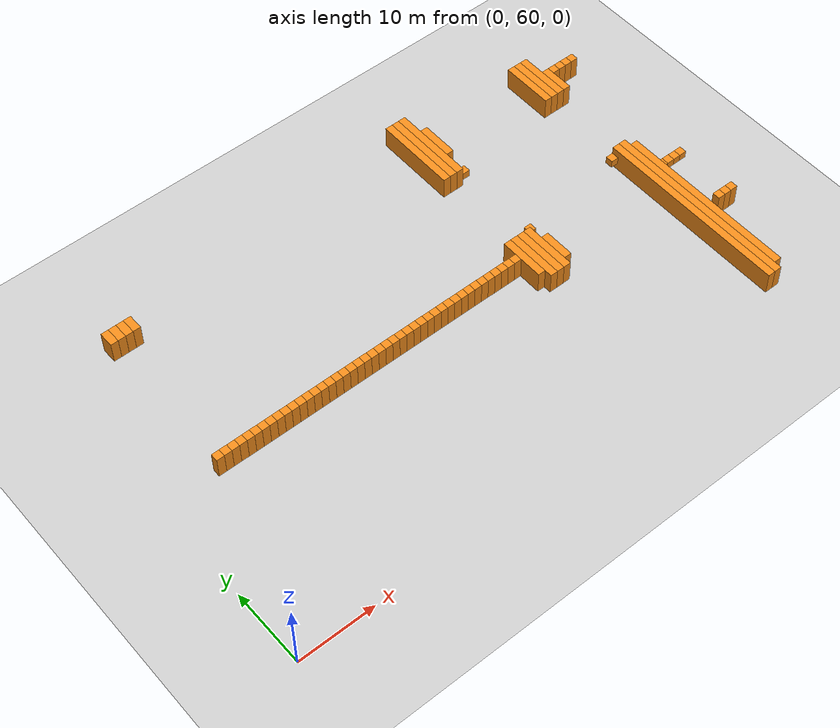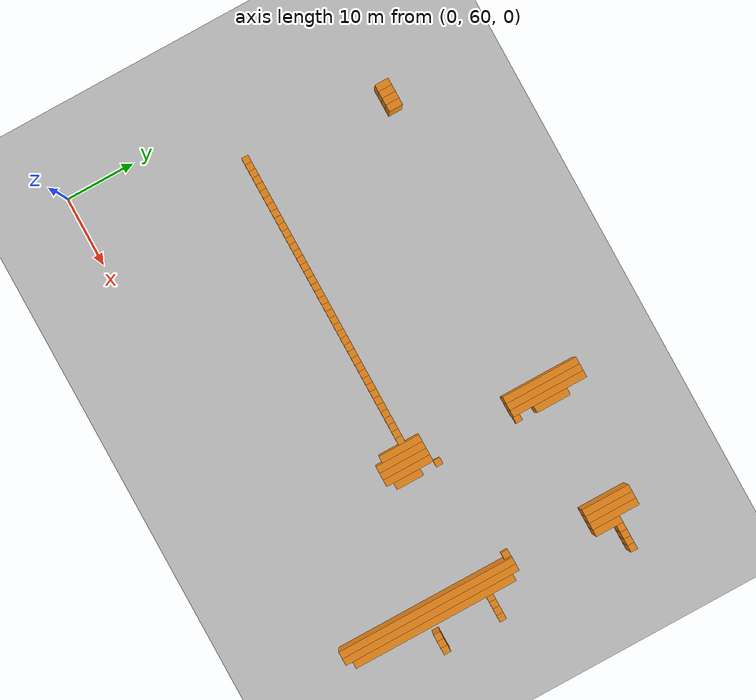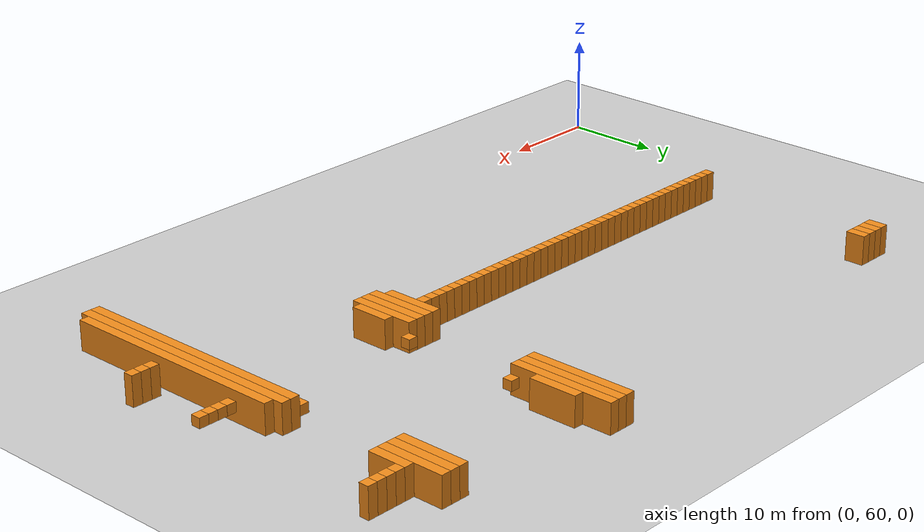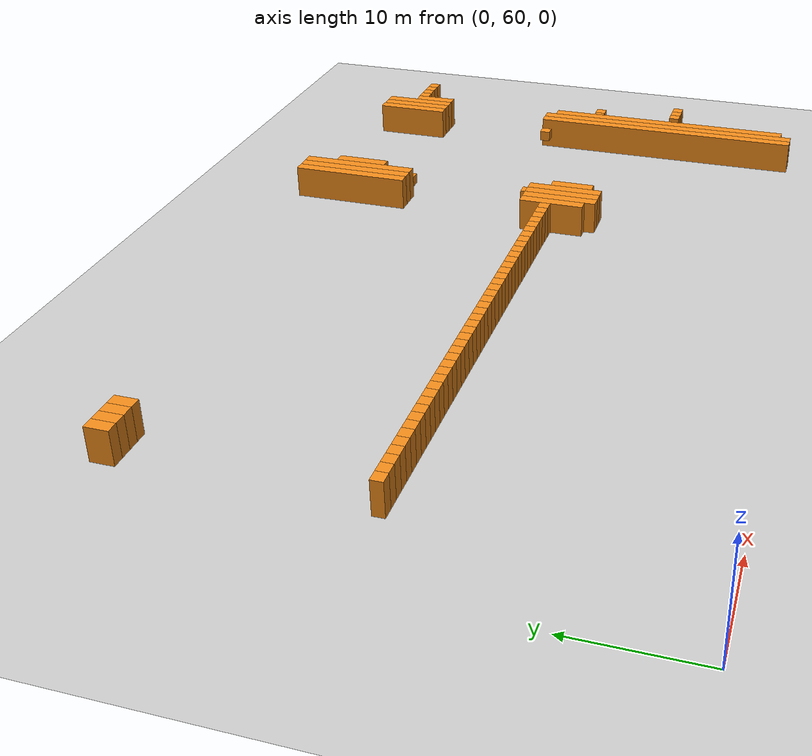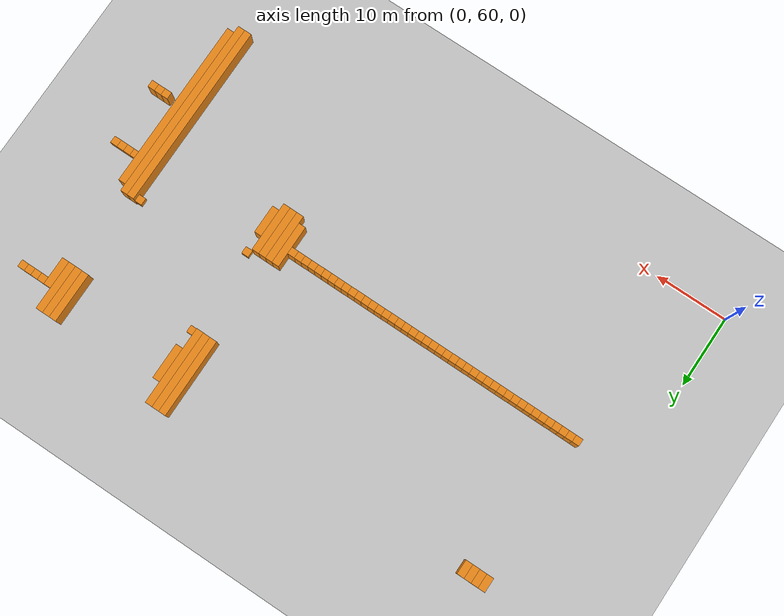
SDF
<sdf version="1.6">
 <world name="default">
  <include><uri>model://ground_plane</uri></include>
  <model name="unit_box_008">
   <pose>7.50    83.50     1.50 0 0 0</pose>
   <static>1</static>
   <link name="link">
    <inertial>
     <mass>5000</mass>
     <inertia><ixx>200</ixx><ixy>0</ixy><ixz>0</ixz><iyy>200</iyy><iyz>0</iyz><izz>200</izz></inertia>
    </inertial>
    <collision name="collision"><geometry><box><size>1 1 3</size></box></geometry></collision>
    <visual name="visual">
     <geometry><box><size>1 1 3</size></box></geometry>
     <material>
      <script><name>Gazebo/Orange</name><uri>file://media/materials/scripts/gazebo.material</uri></script>
     </material>
    </visual>
   </link>
  </model>
  <model name="unit_box_009">
   <pose>7.50   104.00     1.50 0 0 0</pose>
   <static>1</static>
   <link name="link">
    <inertial>
     <mass>5000</mass>
     <inertia><ixx>200</ixx><ixy>0</ixy><ixz>0</ixz><iyy>200</iyy><iyz>0</iyz><izz>200</izz></inertia>
    </inertial>
    <collision name="collision"><geometry><box><size>1 2 3</size></box></geometry></collision>
    <visual name="visual">
     <geometry><box><size>1 2 3</size></box></geometry>
     <material>
      <script><name>Gazebo/Orange</name><uri>file://media/materials/scripts/gazebo.material</uri></script>
     </material>
    </visual>
   </link>
  </model>
  <model name="unit_box_021">
   <pose>8.50    83.50     1.50 0 0 0</pose>
   <static>1</static>
   <link name="link">
    <inertial>
     <mass>5000</mass>
     <inertia><ixx>200</ixx><ixy>0</ixy><ixz>0</ixz><iyy>200</iyy><iyz>0</iyz><izz>200</izz></inertia>
    </inertial>
    <collision name="collision"><geometry><box><size>1 1 3</size></box></geometry></collision>
    <visual name="visual">
     <geometry><box><size>1 1 3</size></box></geometry>
     <material>
      <script><name>Gazebo/Orange</name><uri>file://media/materials/scripts/gazebo.material</uri></script>
     </material>
    </visual>
   </link>
  </model>
  <model name="unit_box_022">
   <pose>8.50   104.00     1.50 0 0 0</pose>
   <static>1</static>
   <link name="link">
    <inertial>
     <mass>5000</mass>
     <inertia><ixx>200</ixx><ixy>0</ixy><ixz>0</ixz><iyy>200</iyy><iyz>0</iyz><izz>200</izz></inertia>
    </inertial>
    <collision name="collision"><geometry><box><size>1 2 3</size></box></geometry></collision>
    <visual name="visual">
     <geometry><box><size>1 2 3</size></box></geometry>
     <material>
      <script><name>Gazebo/Orange</name><uri>file://media/materials/scripts/gazebo.material</uri></script>
     </material>
    </visual>
   </link>
  </model>
  <model name="unit_box_034">
   <pose>9.50    83.50     1.50 0 0 0</pose>
   <static>1</static>
   <link name="link">
    <inertial>
     <mass>5000</mass>
     <inertia><ixx>200</ixx><ixy>0</ixy><ixz>0</ixz><iyy>200</iyy><iyz>0</iyz><izz>200</izz></inertia>
    </inertial>
    <collision name="collision"><geometry><box><size>1 1 3</size></box></geometry></collision>
    <visual name="visual">
     <geometry><box><size>1 1 3</size></box></geometry>
     <material>
      <script><name>Gazebo/Orange</name><uri>file://media/materials/scripts/gazebo.material</uri></script>
     </material>
    </visual>
   </link>
  </model>
  <model name="unit_box_035">
   <pose>9.50   104.00     1.50 0 0 0</pose>
   <static>1</static>
   <link name="link">
    <inertial>
     <mass>5000</mass>
     <inertia><ixx>200</ixx><ixy>0</ixy><ixz>0</ixz><iyy>200</iyy><iyz>0</iyz><izz>200</izz></inertia>
    </inertial>
    <collision name="collision"><geometry><box><size>1 2 3</size></box></geometry></collision>
    <visual name="visual">
     <geometry><box><size>1 2 3</size></box></geometry>
     <material>
      <script><name>Gazebo/Orange</name><uri>file://media/materials/scripts/gazebo.material</uri></script>
     </material>
    </visual>
   </link>
  </model>
  <model name="unit_box_047">
   <pose>10.50    83.50     1.50 0 0 0</pose>
   <static>1</static>
   <link name="link">
    <inertial>
     <mass>5000</mass>
     <inertia><ixx>200</ixx><ixy>0</ixy><ixz>0</ixz><iyy>200</iyy><iyz>0</iyz><izz>200</izz></inertia>
    </inertial>
    <collision name="collision"><geometry><box><size>1 1 3</size></box></geometry></collision>
    <visual name="visual">
     <geometry><box><size>1 1 3</size></box></geometry>
     <material>
      <script><name>Gazebo/Orange</name><uri>file://media/materials/scripts/gazebo.material</uri></script>
     </material>
    </visual>
   </link>
  </model>
  <model name="unit_box_048">
   <pose>10.50   104.00     1.50 0 0 0</pose>
   <static>1</static>
   <link name="link">
    <inertial>
     <mass>5000</mass>
     <inertia><ixx>200</ixx><ixy>0</ixy><ixz>0</ixz><iyy>200</iyy><iyz>0</iyz><izz>200</izz></inertia>
    </inertial>
    <collision name="collision"><geometry><box><size>1 2 3</size></box></geometry></collision>
    <visual name="visual">
     <geometry><box><size>1 2 3</size></box></geometry>
     <material>
      <script><name>Gazebo/Orange</name><uri>file://media/materials/scripts/gazebo.material</uri></script>
     </material>
    </visual>
   </link>
  </model>
  <model name="unit_box_060">
   <pose>11.50    83.50     1.50 0 0 0</pose>
   <static>1</static>
   <link name="link">
    <inertial>
     <mass>5000</mass>
     <inertia><ixx>200</ixx><ixy>0</ixy><ixz>0</ixz><iyy>200</iyy><iyz>0</iyz><izz>200</izz></inertia>
    </inertial>
    <collision name="collision"><geometry><box><size>1 1 3</size></box></geometry></collision>
    <visual name="visual">
     <geometry><box><size>1 1 3</size></box></geometry>
     <material>
      <script><name>Gazebo/Orange</name><uri>file://media/materials/scripts/gazebo.material</uri></script>
     </material>
    </visual>
   </link>
  </model>
  <model name="unit_box_073">
   <pose>12.50    83.50     1.50 0 0 0</pose>
   <static>1</static>
   <link name="link">
    <inertial>
     <mass>5000</mass>
     <inertia><ixx>200</ixx><ixy>0</ixy><ixz>0</ixz><iyy>200</iyy><iyz>0</iyz><izz>200</izz></inertia>
    </inertial>
    <collision name="collision"><geometry><box><size>1 1 3</size></box></geometry></collision>
    <visual name="visual">
     <geometry><box><size>1 1 3</size></box></geometry>
     <material>
      <script><name>Gazebo/Orange</name><uri>file://media/materials/scripts/gazebo.material</uri></script>
     </material>
    </visual>
   </link>
  </model>
  <model name="unit_box_086">
   <pose>13.50    83.50     1.50 0 0 0</pose>
   <static>1</static>
   <link name="link">
    <inertial>
     <mass>5000</mass>
     <inertia><ixx>200</ixx><ixy>0</ixy><ixz>0</ixz><iyy>200</iyy><iyz>0</iyz><izz>200</izz></inertia>
    </inertial>
    <collision name="collision"><geometry><box><size>1 1 3</size></box></geometry></collision>
    <visual name="visual">
     <geometry><box><size>1 1 3</size></box></geometry>
     <material>
      <script><name>Gazebo/Orange</name><uri>file://media/materials/scripts/gazebo.material</uri></script>
     </material>
    </visual>
   </link>
  </model>
  <model name="unit_box_099">
   <pose>14.50    83.50     1.50 0 0 0</pose>
   <static>1</static>
   <link name="link">
    <inertial>
     <mass>5000</mass>
     <inertia><ixx>200</ixx><ixy>0</ixy><ixz>0</ixz><iyy>200</iyy><iyz>0</iyz><izz>200</izz></inertia>
    </inertial>
    <collision name="collision"><geometry><box><size>1 1 3</size></box></geometry></collision>
    <visual name="visual">
     <geometry><box><size>1 1 3</size></box></geometry>
     <material>
      <script><name>Gazebo/Orange</name><uri>file://media/materials/scripts/gazebo.material</uri></script>
     </material>
    </visual>
   </link>
  </model>
  <model name="unit_box_112">
   <pose>15.50    83.50     1.50 0 0 0</pose>
   <static>1</static>
   <link name="link">
    <inertial>
     <mass>5000</mass>
     <inertia><ixx>200</ixx><ixy>0</ixy><ixz>0</ixz><iyy>200</iyy><iyz>0</iyz><izz>200</izz></inertia>
    </inertial>
    <collision name="collision"><geometry><box><size>1 1 3</size></box></geometry></collision>
    <visual name="visual">
     <geometry><box><size>1 1 3</size></box></geometry>
     <material>
      <script><name>Gazebo/Orange</name><uri>file://media/materials/scripts/gazebo.material</uri></script>
     </material>
    </visual>
   </link>
  </model>
  <model name="unit_box_125">
   <pose>16.50    83.50     1.50 0 0 0</pose>
   <static>1</static>
   <link name="link">
    <inertial>
     <mass>5000</mass>
     <inertia><ixx>200</ixx><ixy>0</ixy><ixz>0</ixz><iyy>200</iyy><iyz>0</iyz><izz>200</izz></inertia>
    </inertial>
    <collision name="collision"><geometry><box><size>1 1 3</size></box></geometry></collision>
    <visual name="visual">
     <geometry><box><size>1 1 3</size></box></geometry>
     <material>
      <script><name>Gazebo/Orange</name><uri>file://media/materials/scripts/gazebo.material</uri></script>
     </material>
    </visual>
   </link>
  </model>
  <model name="unit_box_138">
   <pose>17.50    83.50     1.50 0 0 0</pose>
   <static>1</static>
   <link name="link">
    <inertial>
     <mass>5000</mass>
     <inertia><ixx>200</ixx><ixy>0</ixy><ixz>0</ixz><iyy>200</iyy><iyz>0</iyz><izz>200</izz></inertia>
    </inertial>
    <collision name="collision"><geometry><box><size>1 1 3</size></box></geometry></collision>
    <visual name="visual">
     <geometry><box><size>1 1 3</size></box></geometry>
     <material>
      <script><name>Gazebo/Orange</name><uri>file://media/materials/scripts/gazebo.material</uri></script>
     </material>
    </visual>
   </link>
  </model>
  <model name="unit_box_151">
   <pose>18.50    83.50     1.50 0 0 0</pose>
   <static>1</static>
   <link name="link">
    <inertial>
     <mass>5000</mass>
     <inertia><ixx>200</ixx><ixy>0</ixy><ixz>0</ixz><iyy>200</iyy><iyz>0</iyz><izz>200</izz></inertia>
    </inertial>
    <collision name="collision"><geometry><box><size>1 1 3</size></box></geometry></collision>
    <visual name="visual">
     <geometry><box><size>1 1 3</size></box></geometry>
     <material>
      <script><name>Gazebo/Orange</name><uri>file://media/materials/scripts/gazebo.material</uri></script>
     </material>
    </visual>
   </link>
  </model>
  <model name="unit_box_164">
   <pose>19.50    83.50     1.50 0 0 0</pose>
   <static>1</static>
   <link name="link">
    <inertial>
     <mass>5000</mass>
     <inertia><ixx>200</ixx><ixy>0</ixy><ixz>0</ixz><iyy>200</iyy><iyz>0</iyz><izz>200</izz></inertia>
    </inertial>
    <collision name="collision"><geometry><box><size>1 1 3</size></box></geometry></collision>
    <visual name="visual">
     <geometry><box><size>1 1 3</size></box></geometry>
     <material>
      <script><name>Gazebo/Orange</name><uri>file://media/materials/scripts/gazebo.material</uri></script>
     </material>
    </visual>
   </link>
  </model>
  <model name="unit_box_177">
   <pose>20.50    83.50     1.50 0 0 0</pose>
   <static>1</static>
   <link name="link">
    <inertial>
     <mass>5000</mass>
     <inertia><ixx>200</ixx><ixy>0</ixy><ixz>0</ixz><iyy>200</iyy><iyz>0</iyz><izz>200</izz></inertia>
    </inertial>
    <collision name="collision"><geometry><box><size>1 1 3</size></box></geometry></collision>
    <visual name="visual">
     <geometry><box><size>1 1 3</size></box></geometry>
     <material>
      <script><name>Gazebo/Orange</name><uri>file://media/materials/scripts/gazebo.material</uri></script>
     </material>
    </visual>
   </link>
  </model>
  <model name="unit_box_190">
   <pose>21.50    83.50     1.50 0 0 0</pose>
   <static>1</static>
   <link name="link">
    <inertial>
     <mass>5000</mass>
     <inertia><ixx>200</ixx><ixy>0</ixy><ixz>0</ixz><iyy>200</iyy><iyz>0</iyz><izz>200</izz></inertia>
    </inertial>
    <collision name="collision"><geometry><box><size>1 1 3</size></box></geometry></collision>
    <visual name="visual">
     <geometry><box><size>1 1 3</size></box></geometry>
     <material>
      <script><name>Gazebo/Orange</name><uri>file://media/materials/scripts/gazebo.material</uri></script>
     </material>
    </visual>
   </link>
  </model>
  <model name="unit_box_203">
   <pose>22.50    83.50     1.50 0 0 0</pose>
   <static>1</static>
   <link name="link">
    <inertial>
     <mass>5000</mass>
     <inertia><ixx>200</ixx><ixy>0</ixy><ixz>0</ixz><iyy>200</iyy><iyz>0</iyz><izz>200</izz></inertia>
    </inertial>
    <collision name="collision"><geometry><box><size>1 1 3</size></box></geometry></collision>
    <visual name="visual">
     <geometry><box><size>1 1 3</size></box></geometry>
     <material>
      <script><name>Gazebo/Orange</name><uri>file://media/materials/scripts/gazebo.material</uri></script>
     </material>
    </visual>
   </link>
  </model>
  <model name="unit_box_216">
   <pose>23.50    83.50     1.50 0 0 0</pose>
   <static>1</static>
   <link name="link">
    <inertial>
     <mass>5000</mass>
     <inertia><ixx>200</ixx><ixy>0</ixy><ixz>0</ixz><iyy>200</iyy><iyz>0</iyz><izz>200</izz></inertia>
    </inertial>
    <collision name="collision"><geometry><box><size>1 1 3</size></box></geometry></collision>
    <visual name="visual">
     <geometry><box><size>1 1 3</size></box></geometry>
     <material>
      <script><name>Gazebo/Orange</name><uri>file://media/materials/scripts/gazebo.material</uri></script>
     </material>
    </visual>
   </link>
  </model>
  <model name="unit_box_229">
   <pose>24.50    83.50     1.50 0 0 0</pose>
   <static>1</static>
   <link name="link">
    <inertial>
     <mass>5000</mass>
     <inertia><ixx>200</ixx><ixy>0</ixy><ixz>0</ixz><iyy>200</iyy><iyz>0</iyz><izz>200</izz></inertia>
    </inertial>
    <collision name="collision"><geometry><box><size>1 1 3</size></box></geometry></collision>
    <visual name="visual">
     <geometry><box><size>1 1 3</size></box></geometry>
     <material>
      <script><name>Gazebo/Orange</name><uri>file://media/materials/scripts/gazebo.material</uri></script>
     </material>
    </visual>
   </link>
  </model>
  <model name="unit_box_242">
   <pose>25.50    83.50     1.50 0 0 0</pose>
   <static>1</static>
   <link name="link">
    <inertial>
     <mass>5000</mass>
     <inertia><ixx>200</ixx><ixy>0</ixy><ixz>0</ixz><iyy>200</iyy><iyz>0</iyz><izz>200</izz></inertia>
    </inertial>
    <collision name="collision"><geometry><box><size>1 1 3</size></box></geometry></collision>
    <visual name="visual">
     <geometry><box><size>1 1 3</size></box></geometry>
     <material>
      <script><name>Gazebo/Orange</name><uri>file://media/materials/scripts/gazebo.material</uri></script>
     </material>
    </visual>
   </link>
  </model>
  <model name="unit_box_255">
   <pose>26.50    83.50     1.50 0 0 0</pose>
   <static>1</static>
   <link name="link">
    <inertial>
     <mass>5000</mass>
     <inertia><ixx>200</ixx><ixy>0</ixy><ixz>0</ixz><iyy>200</iyy><iyz>0</iyz><izz>200</izz></inertia>
    </inertial>
    <collision name="collision"><geometry><box><size>1 1 3</size></box></geometry></collision>
    <visual name="visual">
     <geometry><box><size>1 1 3</size></box></geometry>
     <material>
      <script><name>Gazebo/Orange</name><uri>file://media/materials/scripts/gazebo.material</uri></script>
     </material>
    </visual>
   </link>
  </model>
  <model name="unit_box_268">
   <pose>27.50    83.50     1.50 0 0 0</pose>
   <static>1</static>
   <link name="link">
    <inertial>
     <mass>5000</mass>
     <inertia><ixx>200</ixx><ixy>0</ixy><ixz>0</ixz><iyy>200</iyy><iyz>0</iyz><izz>200</izz></inertia>
    </inertial>
    <collision name="collision"><geometry><box><size>1 1 3</size></box></geometry></collision>
    <visual name="visual">
     <geometry><box><size>1 1 3</size></box></geometry>
     <material>
      <script><name>Gazebo/Orange</name><uri>file://media/materials/scripts/gazebo.material</uri></script>
     </material>
    </visual>
   </link>
  </model>
  <model name="unit_box_281">
   <pose>28.50    83.50     1.50 0 0 0</pose>
   <static>1</static>
   <link name="link">
    <inertial>
     <mass>5000</mass>
     <inertia><ixx>200</ixx><ixy>0</ixy><ixz>0</ixz><iyy>200</iyy><iyz>0</iyz><izz>200</izz></inertia>
    </inertial>
    <collision name="collision"><geometry><box><size>1 1 3</size></box></geometry></collision>
    <visual name="visual">
     <geometry><box><size>1 1 3</size></box></geometry>
     <material>
      <script><name>Gazebo/Orange</name><uri>file://media/materials/scripts/gazebo.material</uri></script>
     </material>
    </visual>
   </link>
  </model>
  <model name="unit_box_294">
   <pose>29.50    83.50     1.50 0 0 0</pose>
   <static>1</static>
   <link name="link">
    <inertial>
     <mass>5000</mass>
     <inertia><ixx>200</ixx><ixy>0</ixy><ixz>0</ixz><iyy>200</iyy><iyz>0</iyz><izz>200</izz></inertia>
    </inertial>
    <collision name="collision"><geometry><box><size>1 1 3</size></box></geometry></collision>
    <visual name="visual">
     <geometry><box><size>1 1 3</size></box></geometry>
     <material>
      <script><name>Gazebo/Orange</name><uri>file://media/materials/scripts/gazebo.material</uri></script>
     </material>
    </visual>
   </link>
  </model>
  <model name="unit_box_307">
   <pose>30.50    83.50     1.50 0 0 0</pose>
   <static>1</static>
   <link name="link">
    <inertial>
     <mass>5000</mass>
     <inertia><ixx>200</ixx><ixy>0</ixy><ixz>0</ixz><iyy>200</iyy><iyz>0</iyz><izz>200</izz></inertia>
    </inertial>
    <collision name="collision"><geometry><box><size>1 1 3</size></box></geometry></collision>
    <visual name="visual">
     <geometry><box><size>1 1 3</size></box></geometry>
     <material>
      <script><name>Gazebo/Orange</name><uri>file://media/materials/scripts/gazebo.material</uri></script>
     </material>
    </visual>
   </link>
  </model>
  <model name="unit_box_320">
   <pose>31.50    83.50     1.50 0 0 0</pose>
   <static>1</static>
   <link name="link">
    <inertial>
     <mass>5000</mass>
     <inertia><ixx>200</ixx><ixy>0</ixy><ixz>0</ixz><iyy>200</iyy><iyz>0</iyz><izz>200</izz></inertia>
    </inertial>
    <collision name="collision"><geometry><box><size>1 1 3</size></box></geometry></collision>
    <visual name="visual">
     <geometry><box><size>1 1 3</size></box></geometry>
     <material>
      <script><name>Gazebo/Orange</name><uri>file://media/materials/scripts/gazebo.material</uri></script>
     </material>
    </visual>
   </link>
  </model>
  <model name="unit_box_333">
   <pose>32.50    83.50     1.50 0 0 0</pose>
   <static>1</static>
   <link name="link">
    <inertial>
     <mass>5000</mass>
     <inertia><ixx>200</ixx><ixy>0</ixy><ixz>0</ixz><iyy>200</iyy><iyz>0</iyz><izz>200</izz></inertia>
    </inertial>
    <collision name="collision"><geometry><box><size>1 1 3</size></box></geometry></collision>
    <visual name="visual">
     <geometry><box><size>1 1 3</size></box></geometry>
     <material>
      <script><name>Gazebo/Orange</name><uri>file://media/materials/scripts/gazebo.material</uri></script>
     </material>
    </visual>
   </link>
  </model>
  <model name="unit_box_346">
   <pose>33.50    83.50     1.50 0 0 0</pose>
   <static>1</static>
   <link name="link">
    <inertial>
     <mass>5000</mass>
     <inertia><ixx>200</ixx><ixy>0</ixy><ixz>0</ixz><iyy>200</iyy><iyz>0</iyz><izz>200</izz></inertia>
    </inertial>
    <collision name="collision"><geometry><box><size>1 1 3</size></box></geometry></collision>
    <visual name="visual">
     <geometry><box><size>1 1 3</size></box></geometry>
     <material>
      <script><name>Gazebo/Orange</name><uri>file://media/materials/scripts/gazebo.material</uri></script>
     </material>
    </visual>
   </link>
  </model>
  <model name="unit_box_359">
   <pose>34.50    83.50     1.50 0 0 0</pose>
   <static>1</static>
   <link name="link">
    <inertial>
     <mass>5000</mass>
     <inertia><ixx>200</ixx><ixy>0</ixy><ixz>0</ixz><iyy>200</iyy><iyz>0</iyz><izz>200</izz></inertia>
    </inertial>
    <collision name="collision"><geometry><box><size>1 1 3</size></box></geometry></collision>
    <visual name="visual">
     <geometry><box><size>1 1 3</size></box></geometry>
     <material>
      <script><name>Gazebo/Orange</name><uri>file://media/materials/scripts/gazebo.material</uri></script>
     </material>
    </visual>
   </link>
  </model>
  <model name="unit_box_372">
   <pose>35.50    83.50     1.50 0 0 0</pose>
   <static>1</static>
   <link name="link">
    <inertial>
     <mass>5000</mass>
     <inertia><ixx>200</ixx><ixy>0</ixy><ixz>0</ixz><iyy>200</iyy><iyz>0</iyz><izz>200</izz></inertia>
    </inertial>
    <collision name="collision"><geometry><box><size>1 1 3</size></box></geometry></collision>
    <visual name="visual">
     <geometry><box><size>1 1 3</size></box></geometry>
     <material>
      <script><name>Gazebo/Orange</name><uri>file://media/materials/scripts/gazebo.material</uri></script>
     </material>
    </visual>
   </link>
  </model>
  <model name="unit_box_385">
   <pose>36.50    83.50     1.50 0 0 0</pose>
   <static>1</static>
   <link name="link">
    <inertial>
     <mass>5000</mass>
     <inertia><ixx>200</ixx><ixy>0</ixy><ixz>0</ixz><iyy>200</iyy><iyz>0</iyz><izz>200</izz></inertia>
    </inertial>
    <collision name="collision"><geometry><box><size>1 1 3</size></box></geometry></collision>
    <visual name="visual">
     <geometry><box><size>1 1 3</size></box></geometry>
     <material>
      <script><name>Gazebo/Orange</name><uri>file://media/materials/scripts/gazebo.material</uri></script>
     </material>
    </visual>
   </link>
  </model>
  <model name="unit_box_398">
   <pose>37.50    83.50     1.50 0 0 0</pose>
   <static>1</static>
   <link name="link">
    <inertial>
     <mass>5000</mass>
     <inertia><ixx>200</ixx><ixy>0</ixy><ixz>0</ixz><iyy>200</iyy><iyz>0</iyz><izz>200</izz></inertia>
    </inertial>
    <collision name="collision"><geometry><box><size>1 1 3</size></box></geometry></collision>
    <visual name="visual">
     <geometry><box><size>1 1 3</size></box></geometry>
     <material>
      <script><name>Gazebo/Orange</name><uri>file://media/materials/scripts/gazebo.material</uri></script>
     </material>
    </visual>
   </link>
  </model>
  <model name="unit_box_411">
   <pose>38.50    83.50     1.50 0 0 0</pose>
   <static>1</static>
   <link name="link">
    <inertial>
     <mass>5000</mass>
     <inertia><ixx>200</ixx><ixy>0</ixy><ixz>0</ixz><iyy>200</iyy><iyz>0</iyz><izz>200</izz></inertia>
    </inertial>
    <collision name="collision"><geometry><box><size>1 1 3</size></box></geometry></collision>
    <visual name="visual">
     <geometry><box><size>1 1 3</size></box></geometry>
     <material>
      <script><name>Gazebo/Orange</name><uri>file://media/materials/scripts/gazebo.material</uri></script>
     </material>
    </visual>
   </link>
  </model>
  <model name="unit_box_424">
   <pose>39.50    83.50     1.50 0 0 0</pose>
   <static>1</static>
   <link name="link">
    <inertial>
     <mass>5000</mass>
     <inertia><ixx>200</ixx><ixy>0</ixy><ixz>0</ixz><iyy>200</iyy><iyz>0</iyz><izz>200</izz></inertia>
    </inertial>
    <collision name="collision"><geometry><box><size>1 1 3</size></box></geometry></collision>
    <visual name="visual">
     <geometry><box><size>1 1 3</size></box></geometry>
     <material>
      <script><name>Gazebo/Orange</name><uri>file://media/materials/scripts/gazebo.material</uri></script>
     </material>
    </visual>
   </link>
  </model>
  <model name="unit_box_437">
   <pose>40.50    83.50     1.50 0 0 0</pose>
   <static>1</static>
   <link name="link">
    <inertial>
     <mass>5000</mass>
     <inertia><ixx>200</ixx><ixy>0</ixy><ixz>0</ixz><iyy>200</iyy><iyz>0</iyz><izz>200</izz></inertia>
    </inertial>
    <collision name="collision"><geometry><box><size>1 1 3</size></box></geometry></collision>
    <visual name="visual">
     <geometry><box><size>1 1 3</size></box></geometry>
     <material>
      <script><name>Gazebo/Orange</name><uri>file://media/materials/scripts/gazebo.material</uri></script>
     </material>
    </visual>
   </link>
  </model>
  <model name="unit_box_450">
   <pose>41.50    83.50     1.50 0 0 0</pose>
   <static>1</static>
   <link name="link">
    <inertial>
     <mass>5000</mass>
     <inertia><ixx>200</ixx><ixy>0</ixy><ixz>0</ixz><iyy>200</iyy><iyz>0</iyz><izz>200</izz></inertia>
    </inertial>
    <collision name="collision"><geometry><box><size>1 1 3</size></box></geometry></collision>
    <visual name="visual">
     <geometry><box><size>1 1 3</size></box></geometry>
     <material>
      <script><name>Gazebo/Orange</name><uri>file://media/materials/scripts/gazebo.material</uri></script>
     </material>
    </visual>
   </link>
  </model>
  <model name="unit_box_463">
   <pose>42.50    83.50     1.50 0 0 0</pose>
   <static>1</static>
   <link name="link">
    <inertial>
     <mass>5000</mass>
     <inertia><ixx>200</ixx><ixy>0</ixy><ixz>0</ixz><iyy>200</iyy><iyz>0</iyz><izz>200</izz></inertia>
    </inertial>
    <collision name="collision"><geometry><box><size>1 1 3</size></box></geometry></collision>
    <visual name="visual">
     <geometry><box><size>1 1 3</size></box></geometry>
     <material>
      <script><name>Gazebo/Orange</name><uri>file://media/materials/scripts/gazebo.material</uri></script>
     </material>
    </visual>
   </link>
  </model>
  <model name="unit_box_476">
   <pose>43.50    83.50     1.50 0 0 0</pose>
   <static>1</static>
   <link name="link">
    <inertial>
     <mass>5000</mass>
     <inertia><ixx>200</ixx><ixy>0</ixy><ixz>0</ixz><iyy>200</iyy><iyz>0</iyz><izz>200</izz></inertia>
    </inertial>
    <collision name="collision"><geometry><box><size>1 1 3</size></box></geometry></collision>
    <visual name="visual">
     <geometry><box><size>1 1 3</size></box></geometry>
     <material>
      <script><name>Gazebo/Orange</name><uri>file://media/materials/scripts/gazebo.material</uri></script>
     </material>
    </visual>
   </link>
  </model>
  <model name="unit_box_489">
   <pose>44.50    83.50     1.50 0 0 0</pose>
   <static>1</static>
   <link name="link">
    <inertial>
     <mass>5000</mass>
     <inertia><ixx>200</ixx><ixy>0</ixy><ixz>0</ixz><iyy>200</iyy><iyz>0</iyz><izz>200</izz></inertia>
    </inertial>
    <collision name="collision"><geometry><box><size>1 1 3</size></box></geometry></collision>
    <visual name="visual">
     <geometry><box><size>1 1 3</size></box></geometry>
     <material>
      <script><name>Gazebo/Orange</name><uri>file://media/materials/scripts/gazebo.material</uri></script>
     </material>
    </visual>
   </link>
  </model>
  <model name="unit_box_502">
   <pose>45.50    83.50     1.50 0 0 0</pose>
   <static>1</static>
   <link name="link">
    <inertial>
     <mass>5000</mass>
     <inertia><ixx>200</ixx><ixy>0</ixy><ixz>0</ixz><iyy>200</iyy><iyz>0</iyz><izz>200</izz></inertia>
    </inertial>
    <collision name="collision"><geometry><box><size>1 1 3</size></box></geometry></collision>
    <visual name="visual">
     <geometry><box><size>1 1 3</size></box></geometry>
     <material>
      <script><name>Gazebo/Orange</name><uri>file://media/materials/scripts/gazebo.material</uri></script>
     </material>
    </visual>
   </link>
  </model>
  <model name="unit_box_515">
   <pose>46.50    83.50     1.50 0 0 0</pose>
   <static>1</static>
   <link name="link">
    <inertial>
     <mass>5000</mass>
     <inertia><ixx>200</ixx><ixy>0</ixy><ixz>0</ixz><iyy>200</iyy><iyz>0</iyz><izz>200</izz></inertia>
    </inertial>
    <collision name="collision"><geometry><box><size>1 1 3</size></box></geometry></collision>
    <visual name="visual">
     <geometry><box><size>1 1 3</size></box></geometry>
     <material>
      <script><name>Gazebo/Orange</name><uri>file://media/materials/scripts/gazebo.material</uri></script>
     </material>
    </visual>
   </link>
  </model>
  <model name="unit_box_528">
   <pose>47.50    83.50     1.50 0 0 0</pose>
   <static>1</static>
   <link name="link">
    <inertial>
     <mass>5000</mass>
     <inertia><ixx>200</ixx><ixy>0</ixy><ixz>0</ixz><iyy>200</iyy><iyz>0</iyz><izz>200</izz></inertia>
    </inertial>
    <collision name="collision"><geometry><box><size>1 1 3</size></box></geometry></collision>
    <visual name="visual">
     <geometry><box><size>1 1 3</size></box></geometry>
     <material>
      <script><name>Gazebo/Orange</name><uri>file://media/materials/scripts/gazebo.material</uri></script>
     </material>
    </visual>
   </link>
  </model>
  <model name="unit_box_541">
   <pose>48.50    83.50     1.50 0 0 0</pose>
   <static>1</static>
   <link name="link">
    <inertial>
     <mass>5000</mass>
     <inertia><ixx>200</ixx><ixy>0</ixy><ixz>0</ixz><iyy>200</iyy><iyz>0</iyz><izz>200</izz></inertia>
    </inertial>
    <collision name="collision"><geometry><box><size>1 1 3</size></box></geometry></collision>
    <visual name="visual">
     <geometry><box><size>1 1 3</size></box></geometry>
     <material>
      <script><name>Gazebo/Orange</name><uri>file://media/materials/scripts/gazebo.material</uri></script>
     </material>
    </visual>
   </link>
  </model>
  <model name="unit_box_554">
   <pose>49.50    83.50     1.50 0 0 0</pose>
   <static>1</static>
   <link name="link">
    <inertial>
     <mass>5000</mass>
     <inertia><ixx>200</ixx><ixy>0</ixy><ixz>0</ixz><iyy>200</iyy><iyz>0</iyz><izz>200</izz></inertia>
    </inertial>
    <collision name="collision"><geometry><box><size>1 1 3</size></box></geometry></collision>
    <visual name="visual">
     <geometry><box><size>1 1 3</size></box></geometry>
     <material>
      <script><name>Gazebo/Orange</name><uri>file://media/materials/scripts/gazebo.material</uri></script>
     </material>
    </visual>
   </link>
  </model>
  <model name="unit_box_567">
   <pose>50.50    83.00     1.50 0 0 0</pose>
   <static>1</static>
   <link name="link">
    <inertial>
     <mass>5000</mass>
     <inertia><ixx>200</ixx><ixy>0</ixy><ixz>0</ixz><iyy>200</iyy><iyz>0</iyz><izz>200</izz></inertia>
    </inertial>
    <collision name="collision"><geometry><box><size>1 6 3</size></box></geometry></collision>
    <visual name="visual">
     <geometry><box><size>1 6 3</size></box></geometry>
     <material>
      <script><name>Gazebo/Orange</name><uri>file://media/materials/scripts/gazebo.material</uri></script>
     </material>
    </visual>
   </link>
  </model>
  <model name="unit_box_583">
   <pose>51.50    82.50     1.50 0 0 0</pose>
   <static>1</static>
   <link name="link">
    <inertial>
     <mass>5000</mass>
     <inertia><ixx>200</ixx><ixy>0</ixy><ixz>0</ixz><iyy>200</iyy><iyz>0</iyz><izz>200</izz></inertia>
    </inertial>
    <collision name="collision"><geometry><box><size>1 7 3</size></box></geometry></collision>
    <visual name="visual">
     <geometry><box><size>1 7 3</size></box></geometry>
     <material>
      <script><name>Gazebo/Orange</name><uri>file://media/materials/scripts/gazebo.material</uri></script>
     </material>
    </visual>
   </link>
  </model>
  <model name="unit_box_584">
   <pose>51.50   103.50     1.50 0 0 0</pose>
   <static>1</static>
   <link name="link">
    <inertial>
     <mass>5000</mass>
     <inertia><ixx>200</ixx><ixy>0</ixy><ixz>0</ixz><iyy>200</iyy><iyz>0</iyz><izz>200</izz></inertia>
    </inertial>
    <collision name="collision"><geometry><box><size>1 11 3</size></box></geometry></collision>
    <visual name="visual">
     <geometry><box><size>1 11 3</size></box></geometry>
     <material>
      <script><name>Gazebo/Orange</name><uri>file://media/materials/scripts/gazebo.material</uri></script>
     </material>
    </visual>
   </link>
  </model>
  <model name="unit_box_597">
   <pose>52.50    82.50     1.50 0 0 0</pose>
   <static>1</static>
   <link name="link">
    <inertial>
     <mass>5000</mass>
     <inertia><ixx>200</ixx><ixy>0</ixy><ixz>0</ixz><iyy>200</iyy><iyz>0</iyz><izz>200</izz></inertia>
    </inertial>
    <collision name="collision"><geometry><box><size>1 7 3</size></box></geometry></collision>
    <visual name="visual">
     <geometry><box><size>1 7 3</size></box></geometry>
     <material>
      <script><name>Gazebo/Orange</name><uri>file://media/materials/scripts/gazebo.material</uri></script>
     </material>
    </visual>
   </link>
  </model>
  <model name="unit_box_598">
   <pose>52.50   103.50     1.50 0 0 0</pose>
   <static>1</static>
   <link name="link">
    <inertial>
     <mass>5000</mass>
     <inertia><ixx>200</ixx><ixy>0</ixy><ixz>0</ixz><iyy>200</iyy><iyz>0</iyz><izz>200</izz></inertia>
    </inertial>
    <collision name="collision"><geometry><box><size>1 11 3</size></box></geometry></collision>
    <visual name="visual">
     <geometry><box><size>1 11 3</size></box></geometry>
     <material>
      <script><name>Gazebo/Orange</name><uri>file://media/materials/scripts/gazebo.material</uri></script>
     </material>
    </visual>
   </link>
  </model>
  <model name="unit_box_611">
   <pose>53.50    82.50     1.50 0 0 0</pose>
   <static>1</static>
   <link name="link">
    <inertial>
     <mass>5000</mass>
     <inertia><ixx>200</ixx><ixy>0</ixy><ixz>0</ixz><iyy>200</iyy><iyz>0</iyz><izz>200</izz></inertia>
    </inertial>
    <collision name="collision"><geometry><box><size>1 7 3</size></box></geometry></collision>
    <visual name="visual">
     <geometry><box><size>1 7 3</size></box></geometry>
     <material>
      <script><name>Gazebo/Orange</name><uri>file://media/materials/scripts/gazebo.material</uri></script>
     </material>
    </visual>
   </link>
  </model>
  <model name="unit_box_612">
   <pose>53.50   103.50     1.50 0 0 0</pose>
   <static>1</static>
   <link name="link">
    <inertial>
     <mass>5000</mass>
     <inertia><ixx>200</ixx><ixy>0</ixy><ixz>0</ixz><iyy>200</iyy><iyz>0</iyz><izz>200</izz></inertia>
    </inertial>
    <collision name="collision"><geometry><box><size>1 11 3</size></box></geometry></collision>
    <visual name="visual">
     <geometry><box><size>1 11 3</size></box></geometry>
     <material>
      <script><name>Gazebo/Orange</name><uri>file://media/materials/scripts/gazebo.material</uri></script>
     </material>
    </visual>
   </link>
  </model>
  <model name="unit_box_628">
   <pose>54.50    82.00     1.50 0 0 0</pose>
   <static>1</static>
   <link name="link">
    <inertial>
     <mass>5000</mass>
     <inertia><ixx>200</ixx><ixy>0</ixy><ixz>0</ixz><iyy>200</iyy><iyz>0</iyz><izz>200</izz></inertia>
    </inertial>
    <collision name="collision"><geometry><box><size>1 4 3</size></box></geometry></collision>
    <visual name="visual">
     <geometry><box><size>1 4 3</size></box></geometry>
     <material>
      <script><name>Gazebo/Orange</name><uri>file://media/materials/scripts/gazebo.material</uri></script>
     </material>
    </visual>
   </link>
  </model>
  <model name="unit_box_629">
   <pose>54.50    86.50     1.50 0 0 0</pose>
   <static>1</static>
   <link name="link">
    <inertial>
     <mass>5000</mass>
     <inertia><ixx>200</ixx><ixy>0</ixy><ixz>0</ixz><iyy>200</iyy><iyz>0</iyz><izz>200</izz></inertia>
    </inertial>
    <collision name="collision"><geometry><box><size>1 1 1</size></box></geometry></collision>
    <visual name="visual">
     <geometry><box><size>1 1 1</size></box></geometry>
     <material>
      <script><name>Gazebo/Orange</name><uri>file://media/materials/scripts/gazebo.material</uri></script>
     </material>
    </visual>
   </link>
  </model>
  <model name="unit_box_630">
   <pose>54.50    98.50     1.50 0 0 0</pose>
   <static>1</static>
   <link name="link">
    <inertial>
     <mass>5000</mass>
     <inertia><ixx>200</ixx><ixy>0</ixy><ixz>0</ixz><iyy>200</iyy><iyz>0</iyz><izz>200</izz></inertia>
    </inertial>
    <collision name="collision"><geometry><box><size>1 1 1</size></box></geometry></collision>
    <visual name="visual">
     <geometry><box><size>1 1 1</size></box></geometry>
     <material>
      <script><name>Gazebo/Orange</name><uri>file://media/materials/scripts/gazebo.material</uri></script>
     </material>
    </visual>
   </link>
  </model>
  <model name="unit_box_631">
   <pose>54.50   103.50     1.50 0 0 0</pose>
   <static>1</static>
   <link name="link">
    <inertial>
     <mass>5000</mass>
     <inertia><ixx>200</ixx><ixy>0</ixy><ixz>0</ixz><iyy>200</iyy><iyz>0</iyz><izz>200</izz></inertia>
    </inertial>
    <collision name="collision"><geometry><box><size>1 5 3</size></box></geometry></collision>
    <visual name="visual">
     <geometry><box><size>1 5 3</size></box></geometry>
     <material>
      <script><name>Gazebo/Orange</name><uri>file://media/materials/scripts/gazebo.material</uri></script>
     </material>
    </visual>
   </link>
  </model>
  <model name="unit_box_744">
   <pose>69.50    88.50     1.50 0 0 0</pose>
   <static>1</static>
   <link name="link">
    <inertial>
     <mass>5000</mass>
     <inertia><ixx>200</ixx><ixy>0</ixy><ixz>0</ixz><iyy>200</iyy><iyz>0</iyz><izz>200</izz></inertia>
    </inertial>
    <collision name="collision"><geometry><box><size>1 1 1</size></box></geometry></collision>
    <visual name="visual">
     <geometry><box><size>1 1 1</size></box></geometry>
     <material>
      <script><name>Gazebo/Orange</name><uri>file://media/materials/scripts/gazebo.material</uri></script>
     </material>
    </visual>
   </link>
  </model>
  <model name="unit_box_745">
   <pose>69.50   103.50     1.50 0 0 0</pose>
   <static>1</static>
   <link name="link">
    <inertial>
     <mass>5000</mass>
     <inertia><ixx>200</ixx><ixy>0</ixy><ixz>0</ixz><iyy>200</iyy><iyz>0</iyz><izz>200</izz></inertia>
    </inertial>
    <collision name="collision"><geometry><box><size>1 7 3</size></box></geometry></collision>
    <visual name="visual">
     <geometry><box><size>1 7 3</size></box></geometry>
     <material>
      <script><name>Gazebo/Orange</name><uri>file://media/materials/scripts/gazebo.material</uri></script>
     </material>
    </visual>
   </link>
  </model>
  <model name="unit_box_757">
   <pose>70.50    76.00     1.50 0 0 0</pose>
   <static>1</static>
   <link name="link">
    <inertial>
     <mass>5000</mass>
     <inertia><ixx>200</ixx><ixy>0</ixy><ixz>0</ixz><iyy>200</iyy><iyz>0</iyz><izz>200</izz></inertia>
    </inertial>
    <collision name="collision"><geometry><box><size>1 26 3</size></box></geometry></collision>
    <visual name="visual">
     <geometry><box><size>1 26 3</size></box></geometry>
     <material>
      <script><name>Gazebo/Orange</name><uri>file://media/materials/scripts/gazebo.material</uri></script>
     </material>
    </visual>
   </link>
  </model>
  <model name="unit_box_758">
   <pose>70.50   103.50     1.50 0 0 0</pose>
   <static>1</static>
   <link name="link">
    <inertial>
     <mass>5000</mass>
     <inertia><ixx>200</ixx><ixy>0</ixy><ixz>0</ixz><iyy>200</iyy><iyz>0</iyz><izz>200</izz></inertia>
    </inertial>
    <collision name="collision"><geometry><box><size>1 7 3</size></box></geometry></collision>
    <visual name="visual">
     <geometry><box><size>1 7 3</size></box></geometry>
     <material>
      <script><name>Gazebo/Orange</name><uri>file://media/materials/scripts/gazebo.material</uri></script>
     </material>
    </visual>
   </link>
  </model>
  <model name="unit_box_770">
   <pose>71.50    76.00     1.50 0 0 0</pose>
   <static>1</static>
   <link name="link">
    <inertial>
     <mass>5000</mass>
     <inertia><ixx>200</ixx><ixy>0</ixy><ixz>0</ixz><iyy>200</iyy><iyz>0</iyz><izz>200</izz></inertia>
    </inertial>
    <collision name="collision"><geometry><box><size>1 26 3</size></box></geometry></collision>
    <visual name="visual">
     <geometry><box><size>1 26 3</size></box></geometry>
     <material>
      <script><name>Gazebo/Orange</name><uri>file://media/materials/scripts/gazebo.material</uri></script>
     </material>
    </visual>
   </link>
  </model>
  <model name="unit_box_771">
   <pose>71.50   103.50     1.50 0 0 0</pose>
   <static>1</static>
   <link name="link">
    <inertial>
     <mass>5000</mass>
     <inertia><ixx>200</ixx><ixy>0</ixy><ixz>0</ixz><iyy>200</iyy><iyz>0</iyz><izz>200</izz></inertia>
    </inertial>
    <collision name="collision"><geometry><box><size>1 7 3</size></box></geometry></collision>
    <visual name="visual">
     <geometry><box><size>1 7 3</size></box></geometry>
     <material>
      <script><name>Gazebo/Orange</name><uri>file://media/materials/scripts/gazebo.material</uri></script>
     </material>
    </visual>
   </link>
  </model>
  <model name="unit_box_783">
   <pose>72.50    76.00     1.50 0 0 0</pose>
   <static>1</static>
   <link name="link">
    <inertial>
     <mass>5000</mass>
     <inertia><ixx>200</ixx><ixy>0</ixy><ixz>0</ixz><iyy>200</iyy><iyz>0</iyz><izz>200</izz></inertia>
    </inertial>
    <collision name="collision"><geometry><box><size>1 24 3</size></box></geometry></collision>
    <visual name="visual">
     <geometry><box><size>1 24 3</size></box></geometry>
     <material>
      <script><name>Gazebo/Orange</name><uri>file://media/materials/scripts/gazebo.material</uri></script>
     </material>
    </visual>
   </link>
  </model>
  <model name="unit_box_784">
   <pose>72.50   102.00     1.50 0 0 0</pose>
   <static>1</static>
   <link name="link">
    <inertial>
     <mass>5000</mass>
     <inertia><ixx>200</ixx><ixy>0</ixy><ixz>0</ixz><iyy>200</iyy><iyz>0</iyz><izz>200</izz></inertia>
    </inertial>
    <collision name="collision"><geometry><box><size>1 4 3</size></box></geometry></collision>
    <visual name="visual">
     <geometry><box><size>1 4 3</size></box></geometry>
     <material>
      <script><name>Gazebo/Orange</name><uri>file://media/materials/scripts/gazebo.material</uri></script>
     </material>
    </visual>
   </link>
  </model>
  <model name="unit_box_799">
   <pose>73.50    84.00     1.50 0 0 0</pose>
   <static>1</static>
   <link name="link">
    <inertial>
     <mass>5000</mass>
     <inertia><ixx>200</ixx><ixy>0</ixy><ixz>0</ixz><iyy>200</iyy><iyz>0</iyz><izz>200</izz></inertia>
    </inertial>
    <collision name="collision"><geometry><box><size>1 1 1</size></box></geometry></collision>
    <visual name="visual">
     <geometry><box><size>1 1 1</size></box></geometry>
     <material>
      <script><name>Gazebo/Orange</name><uri>file://media/materials/scripts/gazebo.material</uri></script>
     </material>
    </visual>
   </link>
  </model>
  <model name="unit_box_800">
   <pose>73.50   103.50     1.50 0 0 0</pose>
   <static>1</static>
   <link name="link">
    <inertial>
     <mass>5000</mass>
     <inertia><ixx>200</ixx><ixy>0</ixy><ixz>0</ixz><iyy>200</iyy><iyz>0</iyz><izz>200</izz></inertia>
    </inertial>
    <collision name="collision"><geometry><box><size>1 1 3</size></box></geometry></collision>
    <visual name="visual">
     <geometry><box><size>1 1 3</size></box></geometry>
     <material>
      <script><name>Gazebo/Orange</name><uri>file://media/materials/scripts/gazebo.material</uri></script>
     </material>
    </visual>
   </link>
  </model>
  <model name="unit_box_814">
   <pose>74.50    75.50     1.50 0 0 0</pose>
   <static>1</static>
   <link name="link">
    <inertial>
     <mass>5000</mass>
     <inertia><ixx>200</ixx><ixy>0</ixy><ixz>0</ixz><iyy>200</iyy><iyz>0</iyz><izz>200</izz></inertia>
    </inertial>
    <collision name="collision"><geometry><box><size>1 1 3</size></box></geometry></collision>
    <visual name="visual">
     <geometry><box><size>1 1 3</size></box></geometry>
     <material>
      <script><name>Gazebo/Orange</name><uri>file://media/materials/scripts/gazebo.material</uri></script>
     </material>
    </visual>
   </link>
  </model>
  <model name="unit_box_815">
   <pose>74.50    84.00     1.50 0 0 0</pose>
   <static>1</static>
   <link name="link">
    <inertial>
     <mass>5000</mass>
     <inertia><ixx>200</ixx><ixy>0</ixy><ixz>0</ixz><iyy>200</iyy><iyz>0</iyz><izz>200</izz></inertia>
    </inertial>
    <collision name="collision"><geometry><box><size>1 1 1</size></box></geometry></collision>
    <visual name="visual">
     <geometry><box><size>1 1 1</size></box></geometry>
     <material>
      <script><name>Gazebo/Orange</name><uri>file://media/materials/scripts/gazebo.material</uri></script>
     </material>
    </visual>
   </link>
  </model>
  <model name="unit_box_816">
   <pose>74.50   103.50     1.50 0 0 0</pose>
   <static>1</static>
   <link name="link">
    <inertial>
     <mass>5000</mass>
     <inertia><ixx>200</ixx><ixy>0</ixy><ixz>0</ixz><iyy>200</iyy><iyz>0</iyz><izz>200</izz></inertia>
    </inertial>
    <collision name="collision"><geometry><box><size>1 1 3</size></box></geometry></collision>
    <visual name="visual">
     <geometry><box><size>1 1 3</size></box></geometry>
     <material>
      <script><name>Gazebo/Orange</name><uri>file://media/materials/scripts/gazebo.material</uri></script>
     </material>
    </visual>
   </link>
  </model>
  <model name="unit_box_829">
   <pose>75.50    75.50     1.50 0 0 0</pose>
   <static>1</static>
   <link name="link">
    <inertial>
     <mass>5000</mass>
     <inertia><ixx>200</ixx><ixy>0</ixy><ixz>0</ixz><iyy>200</iyy><iyz>0</iyz><izz>200</izz></inertia>
    </inertial>
    <collision name="collision"><geometry><box><size>1 1 3</size></box></geometry></collision>
    <visual name="visual">
     <geometry><box><size>1 1 3</size></box></geometry>
     <material>
      <script><name>Gazebo/Orange</name><uri>file://media/materials/scripts/gazebo.material</uri></script>
     </material>
    </visual>
   </link>
  </model>
  <model name="unit_box_830">
   <pose>75.50    84.00     1.50 0 0 0</pose>
   <static>1</static>
   <link name="link">
    <inertial>
     <mass>5000</mass>
     <inertia><ixx>200</ixx><ixy>0</ixy><ixz>0</ixz><iyy>200</iyy><iyz>0</iyz><izz>200</izz></inertia>
    </inertial>
    <collision name="collision"><geometry><box><size>1 1 1</size></box></geometry></collision>
    <visual name="visual">
     <geometry><box><size>1 1 1</size></box></geometry>
     <material>
      <script><name>Gazebo/Orange</name><uri>file://media/materials/scripts/gazebo.material</uri></script>
     </material>
    </visual>
   </link>
  </model>
  <model name="unit_box_831">
   <pose>75.50   103.50     1.50 0 0 0</pose>
   <static>1</static>
   <link name="link">
    <inertial>
     <mass>5000</mass>
     <inertia><ixx>200</ixx><ixy>0</ixy><ixz>0</ixz><iyy>200</iyy><iyz>0</iyz><izz>200</izz></inertia>
    </inertial>
    <collision name="collision"><geometry><box><size>1 1 3</size></box></geometry></collision>
    <visual name="visual">
     <geometry><box><size>1 1 3</size></box></geometry>
     <material>
      <script><name>Gazebo/Orange</name><uri>file://media/materials/scripts/gazebo.material</uri></script>
     </material>
    </visual>
   </link>
  </model>
  <model name="unit_box_844">
   <pose>76.50    75.50     1.50 0 0 0</pose>
   <static>1</static>
   <link name="link">
    <inertial>
     <mass>5000</mass>
     <inertia><ixx>200</ixx><ixy>0</ixy><ixz>0</ixz><iyy>200</iyy><iyz>0</iyz><izz>200</izz></inertia>
    </inertial>
    <collision name="collision"><geometry><box><size>1 1 3</size></box></geometry></collision>
    <visual name="visual">
     <geometry><box><size>1 1 3</size></box></geometry>
     <material>
      <script><name>Gazebo/Orange</name><uri>file://media/materials/scripts/gazebo.material</uri></script>
     </material>
    </visual>
   </link>
  </model>
  <model name="unit_box_845">
   <pose>76.50    84.00     1.50 0 0 0</pose>
   <static>1</static>
   <link name="link">
    <inertial>
     <mass>5000</mass>
     <inertia><ixx>200</ixx><ixy>0</ixy><ixz>0</ixz><iyy>200</iyy><iyz>0</iyz><izz>200</izz></inertia>
    </inertial>
    <collision name="collision"><geometry><box><size>1 1 1</size></box></geometry></collision>
    <visual name="visual">
     <geometry><box><size>1 1 1</size></box></geometry>
     <material>
      <script><name>Gazebo/Orange</name><uri>file://media/materials/scripts/gazebo.material</uri></script>
     </material>
    </visual>
   </link>
  </model>
  <model name="unit_box_846">
   <pose>76.50   103.50     1.50 0 0 0</pose>
   <static>1</static>
   <link name="link">
    <inertial>
     <mass>5000</mass>
     <inertia><ixx>200</ixx><ixy>0</ixy><ixz>0</ixz><iyy>200</iyy><iyz>0</iyz><izz>200</izz></inertia>
    </inertial>
    <collision name="collision"><geometry><box><size>1 1 3</size></box></geometry></collision>
    <visual name="visual">
     <geometry><box><size>1 1 3</size></box></geometry>
     <material>
      <script><name>Gazebo/Orange</name><uri>file://media/materials/scripts/gazebo.material</uri></script>
     </material>
    </visual>
   </link>
  </model>
 </world>
</sdf>
